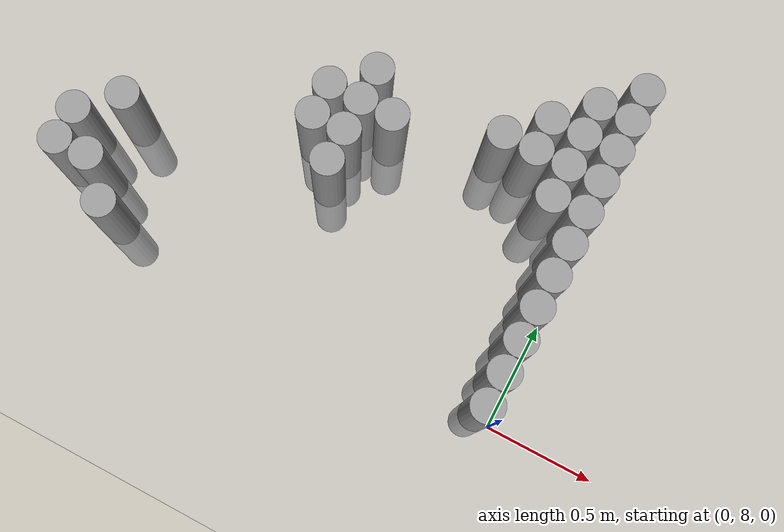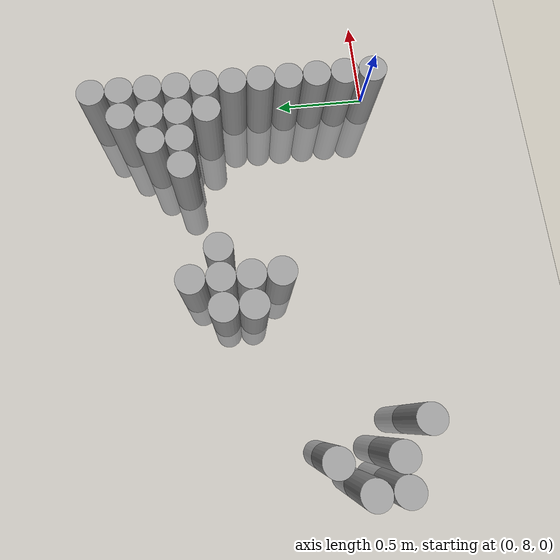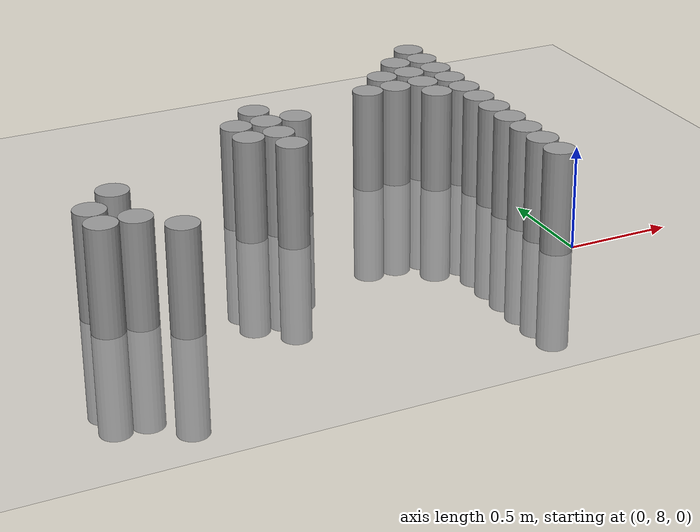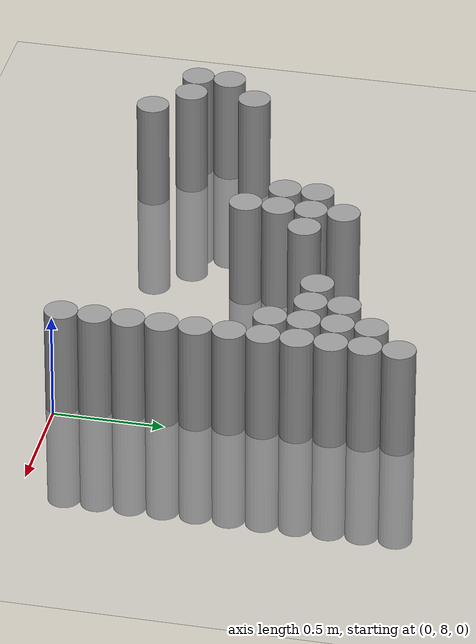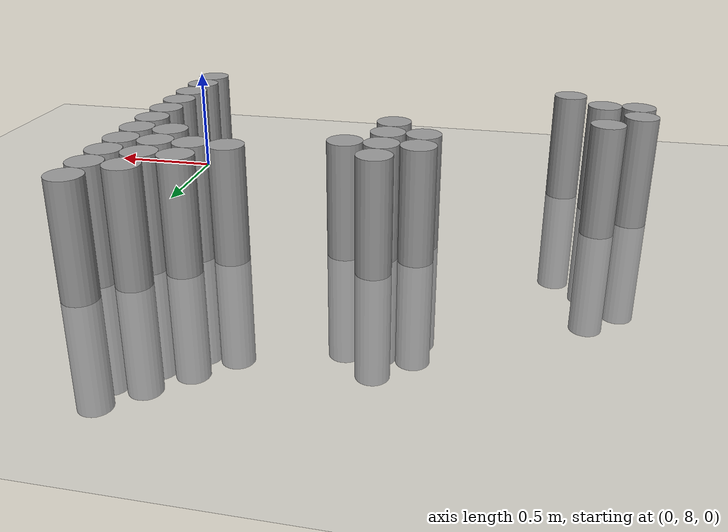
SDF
<sdf version="1.6">
 <world name="default">
  <model name="ground_plane">
   <static>1</static>
   <static>1</static>
   <link name="link">
    <collision name="collision">
     <geometry><plane><normal>0 0 1</normal><size>100 100</size></plane></geometry>
     <surface><friction><ode><mu>100</mu><mu2>50</mu2></ode></friction></surface>
    </collision>
    <visual name="visual">
     <cast_shadows>0</cast_shadows>
     <geometry><plane><normal>0 0 1</normal><size>100 100</size></plane></geometry>
     <material>
      <script><uri>file://media/materials/scripts/gazebo.material</uri><name>Gazebo/Grey</name></script>
     </material>
    </visual>
   </link>
  </model>
  <model name="unit_cylinder_164">
   <static>1</static>
   <pose>-2.175000 8.175000 0.000000 0.000000 0.000000 0.000000</pose>
   <link name="link">
    <inertial>
     <mass>1</mass>
     <inertia><ixx>0.145833</ixx><ixy>0</ixy><ixz>0</ixz><iyy>0.145833</iyy><iyz>0</iyz><izz>0.125</izz></inertia>
    </inertial>
    <collision name="collision">
     <geometry><cylinder><radius>0.075000</radius><length>1</length></cylinder></geometry>
    </collision>
    <visual name="visual">
     <geometry><cylinder><radius>0.075000</radius><length>1</length></cylinder></geometry>
     <material>
      <script><name>Gazebo/Grey</name><uri>file://media/materials/scripts/gazebo.material</uri></script>
     </material>
    </visual>
   </link>
  </model>
  <model name="unit_cylinder_165">
   <static>1</static>
   <pose>-2.175000 8.325000 0.000000 0.000000 0.000000 0.000000</pose>
   <link name="link">
    <inertial>
     <mass>1</mass>
     <inertia><ixx>0.145833</ixx><ixy>0</ixy><ixz>0</ixz><iyy>0.145833</iyy><iyz>0</iyz><izz>0.125</izz></inertia>
    </inertial>
    <collision name="collision">
     <geometry><cylinder><radius>0.075000</radius><length>1</length></cylinder></geometry>
    </collision>
    <visual name="visual">
     <geometry><cylinder><radius>0.075000</radius><length>1</length></cylinder></geometry>
     <material>
      <script><name>Gazebo/Grey</name><uri>file://media/materials/scripts/gazebo.material</uri></script>
     </material>
    </visual>
   </link>
  </model>
  <model name="unit_cylinder_171">
   <static>1</static>
   <pose>-2.025000 8.175000 0.000000 0.000000 0.000000 0.000000</pose>
   <link name="link">
    <inertial>
     <mass>1</mass>
     <inertia><ixx>0.145833</ixx><ixy>0</ixy><ixz>0</ixz><iyy>0.145833</iyy><iyz>0</iyz><izz>0.125</izz></inertia>
    </inertial>
    <collision name="collision">
     <geometry><cylinder><radius>0.075000</radius><length>1</length></cylinder></geometry>
    </collision>
    <visual name="visual">
     <geometry><cylinder><radius>0.075000</radius><length>1</length></cylinder></geometry>
     <material>
      <script><name>Gazebo/Grey</name><uri>file://media/materials/scripts/gazebo.material</uri></script>
     </material>
    </visual>
   </link>
  </model>
  <model name="unit_cylinder_172">
   <static>1</static>
   <pose>-2.025000 8.475000 0.000000 0.000000 0.000000 0.000000</pose>
   <link name="link">
    <inertial>
     <mass>1</mass>
     <inertia><ixx>0.145833</ixx><ixy>0</ixy><ixz>0</ixz><iyy>0.145833</iyy><iyz>0</iyz><izz>0.125</izz></inertia>
    </inertial>
    <collision name="collision">
     <geometry><cylinder><radius>0.075000</radius><length>1</length></cylinder></geometry>
    </collision>
    <visual name="visual">
     <geometry><cylinder><radius>0.075000</radius><length>1</length></cylinder></geometry>
     <material>
      <script><name>Gazebo/Grey</name><uri>file://media/materials/scripts/gazebo.material</uri></script>
     </material>
    </visual>
   </link>
  </model>
  <model name="unit_cylinder_177">
   <static>1</static>
   <pose>-1.875000 8.025000 0.000000 0.000000 0.000000 0.000000</pose>
   <link name="link">
    <inertial>
     <mass>1</mass>
     <inertia><ixx>0.145833</ixx><ixy>0</ixy><ixz>0</ixz><iyy>0.145833</iyy><iyz>0</iyz><izz>0.125</izz></inertia>
    </inertial>
    <collision name="collision">
     <geometry><cylinder><radius>0.075000</radius><length>1</length></cylinder></geometry>
    </collision>
    <visual name="visual">
     <geometry><cylinder><radius>0.075000</radius><length>1</length></cylinder></geometry>
     <material>
      <script><name>Gazebo/Grey</name><uri>file://media/materials/scripts/gazebo.material</uri></script>
     </material>
    </visual>
   </link>
  </model>
  <model name="unit_cylinder_179">
   <static>1</static>
   <pose>-1.275000 8.775000 0.000000 0.000000 0.000000 0.000000</pose>
   <link name="link">
    <inertial>
     <mass>1</mass>
     <inertia><ixx>0.145833</ixx><ixy>0</ixy><ixz>0</ixz><iyy>0.145833</iyy><iyz>0</iyz><izz>0.125</izz></inertia>
    </inertial>
    <collision name="collision">
     <geometry><cylinder><radius>0.075000</radius><length>1</length></cylinder></geometry>
    </collision>
    <visual name="visual">
     <geometry><cylinder><radius>0.075000</radius><length>1</length></cylinder></geometry>
     <material>
      <script><name>Gazebo/Grey</name><uri>file://media/materials/scripts/gazebo.material</uri></script>
     </material>
    </visual>
   </link>
  </model>
  <model name="unit_cylinder_180">
   <static>1</static>
   <pose>-1.275000 8.925000 0.000000 0.000000 0.000000 0.000000</pose>
   <link name="link">
    <inertial>
     <mass>1</mass>
     <inertia><ixx>0.145833</ixx><ixy>0</ixy><ixz>0</ixz><iyy>0.145833</iyy><iyz>0</iyz><izz>0.125</izz></inertia>
    </inertial>
    <collision name="collision">
     <geometry><cylinder><radius>0.075000</radius><length>1</length></cylinder></geometry>
    </collision>
    <visual name="visual">
     <geometry><cylinder><radius>0.075000</radius><length>1</length></cylinder></geometry>
     <material>
      <script><name>Gazebo/Grey</name><uri>file://media/materials/scripts/gazebo.material</uri></script>
     </material>
    </visual>
   </link>
  </model>
  <model name="unit_cylinder_183">
   <static>1</static>
   <pose>-1.125000 8.625000 0.000000 0.000000 0.000000 0.000000</pose>
   <link name="link">
    <inertial>
     <mass>1</mass>
     <inertia><ixx>0.145833</ixx><ixy>0</ixy><ixz>0</ixz><iyy>0.145833</iyy><iyz>0</iyz><izz>0.125</izz></inertia>
    </inertial>
    <collision name="collision">
     <geometry><cylinder><radius>0.075000</radius><length>1</length></cylinder></geometry>
    </collision>
    <visual name="visual">
     <geometry><cylinder><radius>0.075000</radius><length>1</length></cylinder></geometry>
     <material>
      <script><name>Gazebo/Grey</name><uri>file://media/materials/scripts/gazebo.material</uri></script>
     </material>
    </visual>
   </link>
  </model>
  <model name="unit_cylinder_184">
   <static>1</static>
   <pose>-1.125000 8.775000 0.000000 0.000000 0.000000 0.000000</pose>
   <link name="link">
    <inertial>
     <mass>1</mass>
     <inertia><ixx>0.145833</ixx><ixy>0</ixy><ixz>0</ixz><iyy>0.145833</iyy><iyz>0</iyz><izz>0.125</izz></inertia>
    </inertial>
    <collision name="collision">
     <geometry><cylinder><radius>0.075000</radius><length>1</length></cylinder></geometry>
    </collision>
    <visual name="visual">
     <geometry><cylinder><radius>0.075000</radius><length>1</length></cylinder></geometry>
     <material>
      <script><name>Gazebo/Grey</name><uri>file://media/materials/scripts/gazebo.material</uri></script>
     </material>
    </visual>
   </link>
  </model>
  <model name="unit_cylinder_185">
   <static>1</static>
   <pose>-1.125000 8.925000 0.000000 0.000000 0.000000 0.000000</pose>
   <link name="link">
    <inertial>
     <mass>1</mass>
     <inertia><ixx>0.145833</ixx><ixy>0</ixy><ixz>0</ixz><iyy>0.145833</iyy><iyz>0</iyz><izz>0.125</izz></inertia>
    </inertial>
    <collision name="collision">
     <geometry><cylinder><radius>0.075000</radius><length>1</length></cylinder></geometry>
    </collision>
    <visual name="visual">
     <geometry><cylinder><radius>0.075000</radius><length>1</length></cylinder></geometry>
     <material>
      <script><name>Gazebo/Grey</name><uri>file://media/materials/scripts/gazebo.material</uri></script>
     </material>
    </visual>
   </link>
  </model>
  <model name="unit_cylinder_186">
   <static>1</static>
   <pose>-1.125000 9.075000 0.000000 0.000000 0.000000 0.000000</pose>
   <link name="link">
    <inertial>
     <mass>1</mass>
     <inertia><ixx>0.145833</ixx><ixy>0</ixy><ixz>0</ixz><iyy>0.145833</iyy><iyz>0</iyz><izz>0.125</izz></inertia>
    </inertial>
    <collision name="collision">
     <geometry><cylinder><radius>0.075000</radius><length>1</length></cylinder></geometry>
    </collision>
    <visual name="visual">
     <geometry><cylinder><radius>0.075000</radius><length>1</length></cylinder></geometry>
     <material>
      <script><name>Gazebo/Grey</name><uri>file://media/materials/scripts/gazebo.material</uri></script>
     </material>
    </visual>
   </link>
  </model>
  <model name="unit_cylinder_189">
   <static>1</static>
   <pose>-0.975000 8.925000 0.000000 0.000000 0.000000 0.000000</pose>
   <link name="link">
    <inertial>
     <mass>1</mass>
     <inertia><ixx>0.145833</ixx><ixy>0</ixy><ixz>0</ixz><iyy>0.145833</iyy><iyz>0</iyz><izz>0.125</izz></inertia>
    </inertial>
    <collision name="collision">
     <geometry><cylinder><radius>0.075000</radius><length>1</length></cylinder></geometry>
    </collision>
    <visual name="visual">
     <geometry><cylinder><radius>0.075000</radius><length>1</length></cylinder></geometry>
     <material>
      <script><name>Gazebo/Grey</name><uri>file://media/materials/scripts/gazebo.material</uri></script>
     </material>
    </visual>
   </link>
  </model>
  <model name="unit_cylinder_192">
   <static>1</static>
   <pose>-0.525000 9.075000 0.000000 0.000000 0.000000 0.000000</pose>
   <link name="link">
    <inertial>
     <mass>1</mass>
     <inertia><ixx>0.145833</ixx><ixy>0</ixy><ixz>0</ixz><iyy>0.145833</iyy><iyz>0</iyz><izz>0.125</izz></inertia>
    </inertial>
    <collision name="collision">
     <geometry><cylinder><radius>0.075000</radius><length>1</length></cylinder></geometry>
    </collision>
    <visual name="visual">
     <geometry><cylinder><radius>0.075000</radius><length>1</length></cylinder></geometry>
     <material>
      <script><name>Gazebo/Grey</name><uri>file://media/materials/scripts/gazebo.material</uri></script>
     </material>
    </visual>
   </link>
  </model>
  <model name="unit_cylinder_193">
   <static>1</static>
   <pose>-0.375000 9.075000 0.000000 0.000000 0.000000 0.000000</pose>
   <link name="link">
    <inertial>
     <mass>1</mass>
     <inertia><ixx>0.145833</ixx><ixy>0</ixy><ixz>0</ixz><iyy>0.145833</iyy><iyz>0</iyz><izz>0.125</izz></inertia>
    </inertial>
    <collision name="collision">
     <geometry><cylinder><radius>0.075000</radius><length>1</length></cylinder></geometry>
    </collision>
    <visual name="visual">
     <geometry><cylinder><radius>0.075000</radius><length>1</length></cylinder></geometry>
     <material>
      <script><name>Gazebo/Grey</name><uri>file://media/materials/scripts/gazebo.material</uri></script>
     </material>
    </visual>
   </link>
  </model>
  <model name="unit_cylinder_194">
   <static>1</static>
   <pose>-0.375000 9.225000 0.000000 0.000000 0.000000 0.000000</pose>
   <link name="link">
    <inertial>
     <mass>1</mass>
     <inertia><ixx>0.145833</ixx><ixy>0</ixy><ixz>0</ixz><iyy>0.145833</iyy><iyz>0</iyz><izz>0.125</izz></inertia>
    </inertial>
    <collision name="collision">
     <geometry><cylinder><radius>0.075000</radius><length>1</length></cylinder></geometry>
    </collision>
    <visual name="visual">
     <geometry><cylinder><radius>0.075000</radius><length>1</length></cylinder></geometry>
     <material>
      <script><name>Gazebo/Grey</name><uri>file://media/materials/scripts/gazebo.material</uri></script>
     </material>
    </visual>
   </link>
  </model>
  <model name="unit_cylinder_200">
   <static>1</static>
   <pose>-0.225000 8.925000 0.000000 0.000000 0.000000 0.000000</pose>
   <link name="link">
    <inertial>
     <mass>1</mass>
     <inertia><ixx>0.145833</ixx><ixy>0</ixy><ixz>0</ixz><iyy>0.145833</iyy><iyz>0</iyz><izz>0.125</izz></inertia>
    </inertial>
    <collision name="collision">
     <geometry><cylinder><radius>0.075000</radius><length>1</length></cylinder></geometry>
    </collision>
    <visual name="visual">
     <geometry><cylinder><radius>0.075000</radius><length>1</length></cylinder></geometry>
     <material>
      <script><name>Gazebo/Grey</name><uri>file://media/materials/scripts/gazebo.material</uri></script>
     </material>
    </visual>
   </link>
  </model>
  <model name="unit_cylinder_201">
   <static>1</static>
   <pose>-0.225000 9.075000 0.000000 0.000000 0.000000 0.000000</pose>
   <link name="link">
    <inertial>
     <mass>1</mass>
     <inertia><ixx>0.145833</ixx><ixy>0</ixy><ixz>0</ixz><iyy>0.145833</iyy><iyz>0</iyz><izz>0.125</izz></inertia>
    </inertial>
    <collision name="collision">
     <geometry><cylinder><radius>0.075000</radius><length>1</length></cylinder></geometry>
    </collision>
    <visual name="visual">
     <geometry><cylinder><radius>0.075000</radius><length>1</length></cylinder></geometry>
     <material>
      <script><name>Gazebo/Grey</name><uri>file://media/materials/scripts/gazebo.material</uri></script>
     </material>
    </visual>
   </link>
  </model>
  <model name="unit_cylinder_202">
   <static>1</static>
   <pose>-0.225000 9.225000 0.000000 0.000000 0.000000 0.000000</pose>
   <link name="link">
    <inertial>
     <mass>1</mass>
     <inertia><ixx>0.145833</ixx><ixy>0</ixy><ixz>0</ixz><iyy>0.145833</iyy><iyz>0</iyz><izz>0.125</izz></inertia>
    </inertial>
    <collision name="collision">
     <geometry><cylinder><radius>0.075000</radius><length>1</length></cylinder></geometry>
    </collision>
    <visual name="visual">
     <geometry><cylinder><radius>0.075000</radius><length>1</length></cylinder></geometry>
     <material>
      <script><name>Gazebo/Grey</name><uri>file://media/materials/scripts/gazebo.material</uri></script>
     </material>
    </visual>
   </link>
  </model>
  <model name="unit_cylinder_203">
   <static>1</static>
   <pose>-0.225000 9.375000 0.000000 0.000000 0.000000 0.000000</pose>
   <link name="link">
    <inertial>
     <mass>1</mass>
     <inertia><ixx>0.145833</ixx><ixy>0</ixy><ixz>0</ixz><iyy>0.145833</iyy><iyz>0</iyz><izz>0.125</izz></inertia>
    </inertial>
    <collision name="collision">
     <geometry><cylinder><radius>0.075000</radius><length>1</length></cylinder></geometry>
    </collision>
    <visual name="visual">
     <geometry><cylinder><radius>0.075000</radius><length>1</length></cylinder></geometry>
     <material>
      <script><name>Gazebo/Grey</name><uri>file://media/materials/scripts/gazebo.material</uri></script>
     </material>
    </visual>
   </link>
  </model>
  <model name="unit_cylinder_223">
   <static>1</static>
   <pose>-0.075000 8.025000 0.000000 0.000000 0.000000 0.000000</pose>
   <link name="link">
    <inertial>
     <mass>1</mass>
     <inertia><ixx>0.145833</ixx><ixy>0</ixy><ixz>0</ixz><iyy>0.145833</iyy><iyz>0</iyz><izz>0.125</izz></inertia>
    </inertial>
    <collision name="collision">
     <geometry><cylinder><radius>0.075000</radius><length>1</length></cylinder></geometry>
    </collision>
    <visual name="visual">
     <geometry><cylinder><radius>0.075000</radius><length>1</length></cylinder></geometry>
     <material>
      <script><name>Gazebo/Grey</name><uri>file://media/materials/scripts/gazebo.material</uri></script>
     </material>
    </visual>
   </link>
  </model>
  <model name="unit_cylinder_224">
   <static>1</static>
   <pose>-0.075000 8.175000 0.000000 0.000000 0.000000 0.000000</pose>
   <link name="link">
    <inertial>
     <mass>1</mass>
     <inertia><ixx>0.145833</ixx><ixy>0</ixy><ixz>0</ixz><iyy>0.145833</iyy><iyz>0</iyz><izz>0.125</izz></inertia>
    </inertial>
    <collision name="collision">
     <geometry><cylinder><radius>0.075000</radius><length>1</length></cylinder></geometry>
    </collision>
    <visual name="visual">
     <geometry><cylinder><radius>0.075000</radius><length>1</length></cylinder></geometry>
     <material>
      <script><name>Gazebo/Grey</name><uri>file://media/materials/scripts/gazebo.material</uri></script>
     </material>
    </visual>
   </link>
  </model>
  <model name="unit_cylinder_225">
   <static>1</static>
   <pose>-0.075000 8.325000 0.000000 0.000000 0.000000 0.000000</pose>
   <link name="link">
    <inertial>
     <mass>1</mass>
     <inertia><ixx>0.145833</ixx><ixy>0</ixy><ixz>0</ixz><iyy>0.145833</iyy><iyz>0</iyz><izz>0.125</izz></inertia>
    </inertial>
    <collision name="collision">
     <geometry><cylinder><radius>0.075000</radius><length>1</length></cylinder></geometry>
    </collision>
    <visual name="visual">
     <geometry><cylinder><radius>0.075000</radius><length>1</length></cylinder></geometry>
     <material>
      <script><name>Gazebo/Grey</name><uri>file://media/materials/scripts/gazebo.material</uri></script>
     </material>
    </visual>
   </link>
  </model>
  <model name="unit_cylinder_226">
   <static>1</static>
   <pose>-0.075000 8.475000 0.000000 0.000000 0.000000 0.000000</pose>
   <link name="link">
    <inertial>
     <mass>1</mass>
     <inertia><ixx>0.145833</ixx><ixy>0</ixy><ixz>0</ixz><iyy>0.145833</iyy><iyz>0</iyz><izz>0.125</izz></inertia>
    </inertial>
    <collision name="collision">
     <geometry><cylinder><radius>0.075000</radius><length>1</length></cylinder></geometry>
    </collision>
    <visual name="visual">
     <geometry><cylinder><radius>0.075000</radius><length>1</length></cylinder></geometry>
     <material>
      <script><name>Gazebo/Grey</name><uri>file://media/materials/scripts/gazebo.material</uri></script>
     </material>
    </visual>
   </link>
  </model>
  <model name="unit_cylinder_227">
   <static>1</static>
   <pose>-0.075000 8.625000 0.000000 0.000000 0.000000 0.000000</pose>
   <link name="link">
    <inertial>
     <mass>1</mass>
     <inertia><ixx>0.145833</ixx><ixy>0</ixy><ixz>0</ixz><iyy>0.145833</iyy><iyz>0</iyz><izz>0.125</izz></inertia>
    </inertial>
    <collision name="collision">
     <geometry><cylinder><radius>0.075000</radius><length>1</length></cylinder></geometry>
    </collision>
    <visual name="visual">
     <geometry><cylinder><radius>0.075000</radius><length>1</length></cylinder></geometry>
     <material>
      <script><name>Gazebo/Grey</name><uri>file://media/materials/scripts/gazebo.material</uri></script>
     </material>
    </visual>
   </link>
  </model>
  <model name="unit_cylinder_228">
   <static>1</static>
   <pose>-0.075000 8.775000 0.000000 0.000000 0.000000 0.000000</pose>
   <link name="link">
    <inertial>
     <mass>1</mass>
     <inertia><ixx>0.145833</ixx><ixy>0</ixy><ixz>0</ixz><iyy>0.145833</iyy><iyz>0</iyz><izz>0.125</izz></inertia>
    </inertial>
    <collision name="collision">
     <geometry><cylinder><radius>0.075000</radius><length>1</length></cylinder></geometry>
    </collision>
    <visual name="visual">
     <geometry><cylinder><radius>0.075000</radius><length>1</length></cylinder></geometry>
     <material>
      <script><name>Gazebo/Grey</name><uri>file://media/materials/scripts/gazebo.material</uri></script>
     </material>
    </visual>
   </link>
  </model>
  <model name="unit_cylinder_229">
   <static>1</static>
   <pose>-0.075000 8.925000 0.000000 0.000000 0.000000 0.000000</pose>
   <link name="link">
    <inertial>
     <mass>1</mass>
     <inertia><ixx>0.145833</ixx><ixy>0</ixy><ixz>0</ixz><iyy>0.145833</iyy><iyz>0</iyz><izz>0.125</izz></inertia>
    </inertial>
    <collision name="collision">
     <geometry><cylinder><radius>0.075000</radius><length>1</length></cylinder></geometry>
    </collision>
    <visual name="visual">
     <geometry><cylinder><radius>0.075000</radius><length>1</length></cylinder></geometry>
     <material>
      <script><name>Gazebo/Grey</name><uri>file://media/materials/scripts/gazebo.material</uri></script>
     </material>
    </visual>
   </link>
  </model>
  <model name="unit_cylinder_230">
   <static>1</static>
   <pose>-0.075000 9.075000 0.000000 0.000000 0.000000 0.000000</pose>
   <link name="link">
    <inertial>
     <mass>1</mass>
     <inertia><ixx>0.145833</ixx><ixy>0</ixy><ixz>0</ixz><iyy>0.145833</iyy><iyz>0</iyz><izz>0.125</izz></inertia>
    </inertial>
    <collision name="collision">
     <geometry><cylinder><radius>0.075000</radius><length>1</length></cylinder></geometry>
    </collision>
    <visual name="visual">
     <geometry><cylinder><radius>0.075000</radius><length>1</length></cylinder></geometry>
     <material>
      <script><name>Gazebo/Grey</name><uri>file://media/materials/scripts/gazebo.material</uri></script>
     </material>
    </visual>
   </link>
  </model>
  <model name="unit_cylinder_231">
   <static>1</static>
   <pose>-0.075000 9.225000 0.000000 0.000000 0.000000 0.000000</pose>
   <link name="link">
    <inertial>
     <mass>1</mass>
     <inertia><ixx>0.145833</ixx><ixy>0</ixy><ixz>0</ixz><iyy>0.145833</iyy><iyz>0</iyz><izz>0.125</izz></inertia>
    </inertial>
    <collision name="collision">
     <geometry><cylinder><radius>0.075000</radius><length>1</length></cylinder></geometry>
    </collision>
    <visual name="visual">
     <geometry><cylinder><radius>0.075000</radius><length>1</length></cylinder></geometry>
     <material>
      <script><name>Gazebo/Grey</name><uri>file://media/materials/scripts/gazebo.material</uri></script>
     </material>
    </visual>
   </link>
  </model>
  <model name="unit_cylinder_232">
   <static>1</static>
   <pose>-0.075000 9.375000 0.000000 0.000000 0.000000 0.000000</pose>
   <link name="link">
    <inertial>
     <mass>1</mass>
     <inertia><ixx>0.145833</ixx><ixy>0</ixy><ixz>0</ixz><iyy>0.145833</iyy><iyz>0</iyz><izz>0.125</izz></inertia>
    </inertial>
    <collision name="collision">
     <geometry><cylinder><radius>0.075000</radius><length>1</length></cylinder></geometry>
    </collision>
    <visual name="visual">
     <geometry><cylinder><radius>0.075000</radius><length>1</length></cylinder></geometry>
     <material>
      <script><name>Gazebo/Grey</name><uri>file://media/materials/scripts/gazebo.material</uri></script>
     </material>
    </visual>
   </link>
  </model>
  <model name="unit_cylinder_233">
   <static>1</static>
   <pose>-0.075000 9.525000 0.000000 0.000000 0.000000 0.000000</pose>
   <link name="link">
    <inertial>
     <mass>1</mass>
     <inertia><ixx>0.145833</ixx><ixy>0</ixy><ixz>0</ixz><iyy>0.145833</iyy><iyz>0</iyz><izz>0.125</izz></inertia>
    </inertial>
    <collision name="collision">
     <geometry><cylinder><radius>0.075000</radius><length>1</length></cylinder></geometry>
    </collision>
    <visual name="visual">
     <geometry><cylinder><radius>0.075000</radius><length>1</length></cylinder></geometry>
     <material>
      <script><name>Gazebo/Grey</name><uri>file://media/materials/scripts/gazebo.material</uri></script>
     </material>
    </visual>
   </link>
  </model>
 </world>
</sdf>
